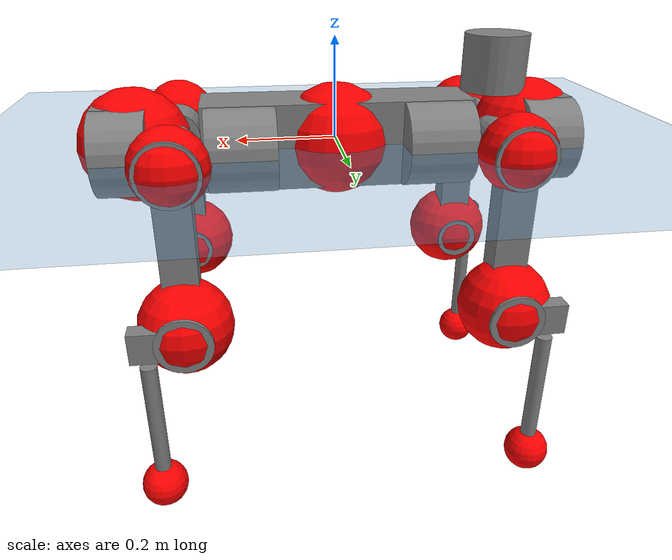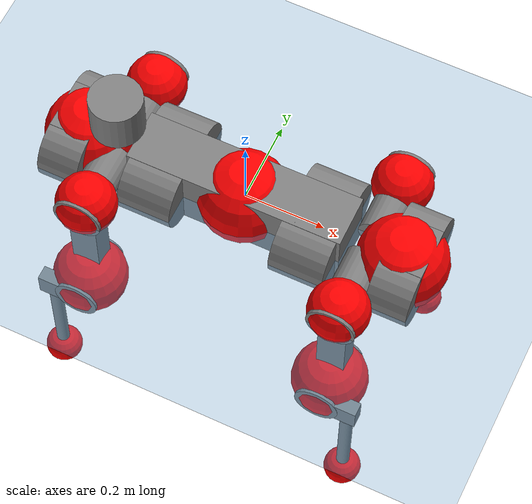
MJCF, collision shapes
<mujoco model="anymal_c">
  <compiler angle="radian" assetdir="assets" balanceinertia="true" inertiafromgeom="false"/>

  <option timestep="0.005" density="1.2" viscosity="2e-05"/>

  <size nkey="1"/>

  <visual>
    <quality shadowsize="8192"/>
    <map shadowclip="0.5"/>
  </visual>

  <default>
    <default class="/">
      <material specular="0" shininess="0.25"/>
      <geom contype="0" conaffinity="0" group="1" solref="-1000 -80"/>
      <site size="0.01 0.005 0.005" group="5"/>
      <general forcelimited="true" forcerange="-80 80" biastype="affine" gainprm="80" biasprm="0 -80 -2"/>
      <default class="anymal_c">
        <joint armature="0.01" damping="0.01" frictionloss="0.1"/>
        <default class="visual">
          <geom type="mesh" group="2"/>
          <default class="visual_zflip"/>
        </default>
        <default class="collision">
          <geom type="cylinder" group="3"/>
          <default class="foot">
            <geom size="0.03 0 0" type="sphere" condim="6" priority="1" friction="0.8 0.02 0.01" solimp="0.015 1 0.03"/>
          </default>
        </default>
      </default>
      <default class="reward_collision_sphere">
        <geom group="5" rgba="1 0 0 1"/>
      </default>
    </default>
  </default>

  <asset>
    <texture type="skybox" colorspace="auto" name="//unnamed_texture_0" builtin="gradient" rgb1="0.95 0.95 0.95" rgb2="0.95 0.95 0.95" width="100" height="600"/>
    <texture type="2d" colorspace="auto" name="texplane" builtin="checker" rgb1="0.345 0.575 0.748" rgb2="0.345 0.575 0.748" markrgb="1 1 1" width="512" height="512"/>
    <texture type="2d" colorspace="linear" name="base" file="base.png"/>
    <texture type="2d" colorspace="linear" name="top_shell" file="top_shell.png"/>
    <texture type="2d" colorspace="linear" name="bottom_shell" file="bottom_shell.png"/>
    <texture type="2d" colorspace="linear" name="remote" file="remote.png"/>
    <texture type="2d" colorspace="linear" name="hatch" file="hatch.png"/>
    <texture type="2d" colorspace="linear" name="handle" file="handle.png"/>
    <texture type="2d" colorspace="linear" name="face" file="face.png"/>
    <texture type="2d" colorspace="linear" name="battery" file="battery.png"/>
    <texture type="2d" colorspace="linear" name="lidar_cage" file="lidar_cage.png"/>
    <texture type="2d" colorspace="linear" name="depth_camera" file="depth_camera.png"/>
    <texture type="2d" colorspace="linear" name="wide_angle_camera" file="wide_angle_camera.png"/>
    <texture type="2d" colorspace="linear" name="lidar" file="lidar.png"/>
    <texture type="2d" colorspace="linear" name="drive" file="drive.png"/>
    <texture type="2d" colorspace="linear" name="hip_l" file="hip_l.png"/>
    <texture type="2d" colorspace="linear" name="shank_l" file="shank_l.png"/>
    <texture type="2d" colorspace="linear" name="foot" file="foot.png"/>
    <texture type="2d" colorspace="linear" name="thigh" file="thigh.png"/>
    <texture type="2d" colorspace="linear" name="shank_r" file="shank_r.png"/>
    <texture type="2d" colorspace="linear" name="hip_r" file="hip_r.png"/>
    <material name="MatPlane" class="/" texture="texplane" texuniform="true" texrepeat="2 2" specular="0.9" shininess="0.5"/>
    <material name="black_plastic" class="/" rgba="0.007 0.007 0.007 1"/>
    <material name="green" class="/" rgba="0.052 0.178 0.033 1"/>
    <material name="red" class="/" rgba="0.178 0.006 0.005 1"/>
    <material name="yellow" class="/" rgba="0.178 0.119 0.006 1"/>
    <material name="lwl" class="/" rgba="0.8 0.8 0.8 1"/>
    <material name="base" class="/" texture="base"/>
    <material name="top_shell" class="/" texture="top_shell"/>
    <material name="bottom_shell" class="/" texture="bottom_shell"/>
    <material name="hip_l" class="/" texture="hip_l"/>
    <material name="thigh" class="/" texture="thigh"/>
    <material name="shank_l" class="/" texture="shank_l"/>
    <material name="foot" class="/" texture="foot"/>
    <material name="hip_r" class="/" texture="hip_r"/>
    <material name="shank" class="/" texture="shank_r"/>
    <material name="hatch" class="/" texture="hatch"/>
    <material name="remote" class="/" texture="remote"/>
    <material name="handle" class="/" texture="handle"/>
    <material name="face" class="/" texture="face"/>
    <material name="depth_camera" class="/" texture="depth_camera"/>
    <material name="wide_angle_camera" class="/" texture="wide_angle_camera"/>
    <material name="battery" class="/" texture="battery"/>
    <material name="lidar_cage" class="/" texture="lidar_cage"/>
    <material name="lidar" class="/" texture="lidar"/>
    <material name="drive" class="/" texture="drive"/>
    <mesh name="base_0" class="/" file="base_0.obj"/>
    <mesh name="base_1" class="/" file="base_1.obj"/>
    <mesh name="base_2" class="/" file="base_2.obj"/>
    <mesh name="base_3" class="/" file="base_3.obj"/>
    <mesh name="base_4" class="/" file="base_4.obj"/>
    <mesh name="base_5" class="/" file="base_5.obj"/>
    <mesh name="top_shell" class="/" file="top_shell.obj"/>
    <mesh name="bottom_shell" class="/" file="bottom_shell.obj"/>
    <mesh name="remote" class="/" file="remote.obj"/>
    <mesh name="handle" class="/" file="handle.obj"/>
    <mesh name="face" class="/" file="face.obj"/>
    <mesh name="wide_angle_camera" class="/" file="wide_angle_camera.obj"/>
    <mesh name="depth_camera" class="/" file="depth_camera.obj"/>
    <mesh name="battery" class="/" file="battery.obj"/>
    <mesh name="lidar_cage" class="/" file="lidar_cage.obj"/>
    <mesh name="lidar" class="/" file="lidar.obj"/>
    <mesh name="drive" class="/" file="drive.obj"/>
    <mesh name="hip_l" class="/" file="hip_l.obj"/>
    <mesh name="thigh" class="/" file="thigh.obj"/>
    <mesh name="shank_l" class="/" file="shank_l.obj"/>
    <mesh name="foot" class="/" file="foot.obj"/>
    <mesh name="hip_r" class="/" file="hip_r.obj"/>
    <mesh name="hatch" class="/" file="hatch.obj"/>
    <mesh name="shank_r" class="/" file="shank_r.obj"/>
  </asset>

  <worldbody>
    <geom name="floor" class="/" size="100 100 0.125" type="plane" group="0" material="MatPlane"/>
    <light name="toplight_shadow" class="/" pos="0 0 5" dir="0.0990148 0.0990148 -0.990148" type="directional" ambient="0.04 0.04 0.04" diffuse="0.55 0.55 0.55" specular="0.12 0.12 0.12"/>
    <light name="toplight_fill" class="/" pos="0 0 5" dir="0.0990148 0.0990148 -0.990148" type="directional" castshadow="false" ambient="0.04 0.04 0.04" diffuse="0.3 0.3 0.3" specular="0.08 0.08 0.08"/>
    <body name="trunk" childclass="anymal_c" pos="-0.00254588 -0.00103552 -0.00145423" quat="0.999999 0.000332296 -0.00105878 -1.33739e-05">
      <inertial pos="0.000327193 0.00143042 0.0540021" quat="0.505551 0.507549 0.49082 0.495891" mass="15.3909" diaginertia="0.371795 0.229501 0.335753"/>
      <joint name="//unnamed_joint_0" type="free" armature="0" damping="0" frictionloss="0"/>
      <geom name="//unnamed_geom_1" class="visual" material="green" mesh="base_0"/>
      <geom name="//unnamed_geom_2" class="visual" material="yellow" mesh="base_1"/>
      <geom name="//unnamed_geom_3" class="visual" material="red" mesh="base_2"/>
      <geom name="//unnamed_geom_4" class="visual" material="black_plastic" mesh="base_3"/>
      <geom name="//unnamed_geom_5" class="visual" material="lwl" mesh="base_4"/>
      <geom name="//unnamed_geom_6" class="visual" material="base" mesh="base_5"/>
      <geom name="trunk_1" class="collision" size="0.271007 0.0654155 0.0841057" type="box"/>
      <geom name="trunk_2" class="collision" size="0.0841057 0.0677518" pos="0.19449 0.0574675 0" quat="0.707107 0 0.707107 0"/>
      <geom name="trunk_3" class="collision" size="0.0841057 0.0677518" pos="-0.19449 0.0574675 0" quat="0.707107 0 0.707107 0"/>
      <geom name="trunk_4" class="collision" size="0.0841057 0.0677518" pos="0.19449 -0.0574675 0" quat="0.707107 0 0.707107 0"/>
      <geom name="trunk_5" class="collision" size="0.0841057 0.0677518" pos="-0.19449 -0.0574675 0" quat="0.707107 0 0.707107 0"/>
      <geom name="//unnamed_geom_12" class="visual" material="top_shell" mesh="top_shell"/>
      <geom name="//unnamed_geom_13" class="visual" material="bottom_shell" mesh="bottom_shell"/>
      <geom name="//unnamed_geom_14" class="visual" material="remote" mesh="remote"/>
      <geom name="//unnamed_geom_15" class="visual" material="handle" mesh="handle"/>
      <geom name="//unnamed_geom_16" class="visual" pos="0.370649 0 0" quat="1 0 0 0" material="face" mesh="face"/>
      <geom name="trunk_6" class="collision" size="0.0513979 0.0654155 0.0841057" pos="0.41983 0 0" type="box"/>
      <geom name="//unnamed_geom_18" class="collision" size="0.0841057 0.0513979" pos="0.41983 0.0574675 0" quat="0.707107 0 0.707107 0"/>
      <geom name="//unnamed_geom_19" class="collision" size="0.0841057 0.0513979" pos="0.41983 -0.0574675 0" quat="0.707107 0 0.707107 0"/>
      <geom name="//unnamed_geom_20" class="visual" pos="0.412819 0 -0.0332553" quat="0.965926 0 0.258819 0" material="depth_camera" mesh="depth_camera"/>
      <geom name="//unnamed_geom_21" class="visual" pos="0.458729 0 0.0162926" material="wide_angle_camera" mesh="wide_angle_camera"/>
      <geom name="//unnamed_geom_22" class="visual_zflip" pos="-0.370649 0 0" quat="0 0 0 1" material="face" mesh="face"/>
      <geom name="trunk_7" class="collision" size="0.0513979 0.0654155 0.0841057" pos="-0.41983 0 0" quat="0 0 0 1" type="box"/>
      <geom name="//unnamed_geom_24" class="collision" size="0.0841057 0.0513979" pos="-0.41983 -0.0574675 0" quat="0 -0.707107 0 0.707107"/>
      <geom name="//unnamed_geom_25" class="collision" size="0.0841057 0.0513979" pos="-0.41983 0.0574675 0" quat="0 -0.707107 0 0.707107"/>
      <geom name="//unnamed_geom_26" class="visual" pos="-0.412819 0 -0.0332553" quat="0 -0.258819 0 0.965926" material="depth_camera" mesh="depth_camera"/>
      <geom name="//unnamed_geom_27" class="visual_zflip" pos="-0.458729 0 0.0162926" quat="0 0 0 1" material="wide_angle_camera" mesh="wide_angle_camera"/>
      <geom name="//unnamed_geom_28" class="visual" material="battery" mesh="battery"/>
      <geom name="//unnamed_geom_29" class="visual" pos="0 0.0618179 0.0301411" quat="0.683013 -0.183013 0.183013 0.683013" material="depth_camera" mesh="depth_camera"/>
      <geom name="//unnamed_geom_30" class="visual" pos="0 -0.0618179 0.0301411" quat="0.683013 0.183013 0.183013 -0.683013" material="depth_camera" mesh="depth_camera"/>
      <geom name="//unnamed_geom_31" class="visual" pos="-0.325492 0 0.0799938" quat="1 0 0 0" material="lidar_cage" mesh="lidar_cage"/>
      <geom name="trunk_8" class="collision" size="0.0654155 0.0560705" pos="-0.325492 0 0.145295"/>
      <geom name="//unnamed_geom_33" class="visual" pos="-0.325492 -2.87754e-05 0.154764" quat="0.707107 0 0 -0.707107" material="lidar" mesh="lidar"/>
      <geom name="//unnamed_geom_34" class="visual" pos="0.268173 0.0854753 -4.61246e-09" quat="0.258819 0.965926 0 0" material="drive" mesh="drive"/>
      <geom name="//unnamed_geom_35" class="visual" pos="0.268173 -0.0854753 4.61246e-09" quat="0.258819 -0.965926 0 0" material="drive" mesh="drive"/>
      <geom name="//unnamed_geom_36" class="visual" pos="-0.268173 0.0854753 4.61246e-09" quat="0 0 0.965926 -0.258819" material="drive" mesh="drive"/>
      <geom name="//unnamed_geom_37" class="visual" pos="-0.268173 -0.0854753 -4.61246e-09" quat="0 0 -0.965926 -0.258819" material="drive" mesh="drive"/>
      <geom name="//unnamed_geom_38" class="visual" pos="0.103728 0 0.0794496" quat="1 0 0 0" material="hatch" mesh="hatch"/>
      <geom name="//unnamed_geom_39" class="reward_collision_sphere" size="0.112141"/>
      <geom name="//unnamed_geom_40" class="reward_collision_sphere" size="0.112141" pos="0.402393 0 0"/>
      <geom name="//unnamed_geom_41" class="reward_collision_sphere" size="0.112141" pos="-0.402393 0 0"/>
      <site name="imu" pos="0.231402 -0.00409298 0.0491452" size="0.00934508"/>
      <camera name="track" pos="0 -1.64193 0" quat="0.707107 0.707107 0 0" mode="trackcom"/>
      <camera name="ego_camera" pos="0.402393 0 -0.043534" quat="-0.5 -0.5 0.5 0.5"/>
      <body name="LF_HIP" pos="0.269127 0.0863407 -0.00236067" quat="0.260061 0.965592 -0.000287406 -0.000153298">
        <inertial pos="0.0492441 -0.012606 -0.0083099" quat="-0.127942 0.703298 -0.127556 0.687555" mass="2.34535" diaginertia="0.00345293 0.00189054 0.00529004"/>
        <joint name="LF_HAA" pos="0 0 0" axis="0.99992 0.0124244 -0.00221839" stiffness="0.00164333" range="-0.665785 0.494153" armature="0.0106704" damping="0.00598595" frictionloss="0.0984517"/>
        <geom name="//unnamed_geom_42" class="visual" pos="0 -0.00027133 4.45657e-05" quat="0.258819 -0.965926 0 0" material="hip_l" mesh="hip_l"/>
        <geom name="//unnamed_geom_43" class="visual" pos="0.053563 -0.0640336 -0.0389476" quat="0.183013 -0.683013 0.683013 0.183013" material="drive" mesh="drive"/>
        <geom name="//unnamed_geom_44" class="collision" size="0.0467254 0.0654155" pos="0.053563 -0.00981857 -0.00751506" quat="-0.353553 -0.612372 0.612372 -0.353553"/>
        <body name="LF_THIGH" pos="0.0538217 -0.0598113 -0.0463542" quat="0.182814 -0.683042 0.683062 0.182919">
          <inertial pos="0.0272904 -0.00258079 -0.269526" quat="0.993338 -0.00470838 -0.0805712 0.0822584" mass="2.54361" diaginertia="0.0170886 0.0109232 0.00631683"/>
          <joint name="LF_HFE" pos="0 0 0" axis="0.999999 -0.000928033 -0.00144448" stiffness="0.00426508" range="-3.14384 3.18702" armature="0.00867088" damping="0" frictionloss="0.0932169"/>
          <geom name="//unnamed_geom_45" class="visual" pos="0.00145726 2.2963e-06 0" quat="0.707107 0 0 -0.707107" material="thigh" mesh="thigh"/>
          <geom name="//unnamed_geom_46" class="collision" size="0.060743 0.0373803" pos="0.0357683 0 0" quat="0.5 0.5 -0.5 -0.5"/>
          <geom name="//unnamed_geom_47" class="collision" size="0.035044 0.0280352 0.132059" pos="0.0268262 0 -0.153799" quat="0.707107 0 0 -0.707107" type="box"/>
          <geom name="//unnamed_geom_48" class="visual" pos="0.089689 0 -0.31018" quat="1 0 0 0" material="drive" mesh="drive"/>
          <geom name="//unnamed_geom_49" class="collision" size="0.0467254 0.0654155" pos="0.0270945 0 -0.31018" quat="0.707107 0 0.707107 0"/>
          <geom name="//unnamed_geom_50" class="reward_collision_sphere" size="0.0747606" pos="0.0223552 0 0"/>
          <body name="LF_SHANK" pos="0.0916362 0.0019653 -0.307827" quat="1 -3.32112e-05 -9.97675e-06 -2.77216e-05">
            <inertial pos="0.00524741 -0.0519875 -0.0854335" quat="0.992806 -0.117031 0.000112551 -0.0253172" mass="0.499768" diaginertia="0.00603073 0.00350614 0.00171435"/>
            <joint name="LF_KFE" pos="0 0 0" axis="0.999998 0.00109523 0.00141231" range="-3.09354 3.08443" armature="0.00916403" damping="0.0102355" frictionloss="0.0977988"/>
            <geom name="//unnamed_geom_51" class="visual" pos="0.00047518 0.00253369 0" quat="0.707107 0 0 -0.707107" material="shank_l" mesh="shank_l"/>
            <geom name="LF_kfe_act" class="collision" size="0.0560705 0.0186902" pos="0.0178842 0 0" quat="0.5 0.5 -0.5 -0.5"/>
            <geom name="//unnamed_geom_53" class="collision" size="0.0537333 0.0315396 0.0177556" pos="0.0178842 -0.0472046 0" quat="0.5 0.5 -0.5 -0.5" type="box"/>
            <geom name="//unnamed_geom_54" class="visual" pos="0.0116693 -0.0713873 -0.36783" quat="0.382683 0 0 -0.92388" material="foot" mesh="foot"/>
            <geom name="LF_calf" class="collision" size="0.0163539 0.132001" pos="0.0116694 -0.0722038 -0.183915" quat="0.707107 0 0 -0.707107"/>
            <geom name="LF_foot" class="foot" size="0.0267651" pos="0.0116694 -0.0722038 -0.343342" quat="0.707107 0 0 -0.707107"/>
            <geom name="//unnamed_geom_57" class="reward_collision_sphere" size="0.0934508" pos="-0.0447104 0 0"/>
            <geom name="//unnamed_geom_58" class="reward_collision_sphere" size="0.0467254" pos="0.0116694 -0.0722038 -0.343342"/>
            <site name="LF_foot" class="foot" pos="0.0116694 -0.0722038 -0.343342" quat="0.707107 0 0 -0.707107" size="0.00934508"/>
          </body>
        </body>
      </body>
      <body name="RF_HIP" pos="0.270322 -0.0843736 0.00282578" quat="0.258819 -0.965926 2.50253e-06 2.93699e-07">
        <inertial pos="0.0514273 0.0107117 -0.00858845" quat="0.136166 0.670667 0.122468 0.718795" mass="2.35211" diaginertia="0.00338981 0.00191126 0.00511822"/>
        <joint name="RF_HAA" pos="0 0 0" axis="0.999996 0.000174629 -0.00277822" range="-0.441284 0.721649" armature="0.00935305" damping="0.00874182" frictionloss="0.0935831"/>
        <geom name="//unnamed_geom_59" class="visual" pos="0 0.000271328 4.45656e-05" quat="0.258819 0.965926 0 0" material="hip_r" mesh="hip_r"/>
        <geom name="//unnamed_geom_60" class="visual" pos="0.053563 0.0640336 -0.0389476" quat="0.183013 0.683013 0.683013 -0.183013" material="drive" mesh="drive"/>
        <geom name="//unnamed_geom_61" class="collision" size="0.0467254 0.0654155" pos="0.053563 0.00981857 -0.00751506" quat="-0.353553 0.612372 0.612372 0.353553"/>
        <body name="RF_THIGH" pos="0.0552041 0.0618305 -0.0487969" quat="0.18292 0.683073 0.683033 -0.182804">
          <inertial pos="0.0278639 7.11475e-05 -0.269742" quat="0.993457 -0.00880807 -0.0708997 0.0890952" mass="2.58037" diaginertia="0.0175036 0.0115068 0.00659277"/>
          <joint name="RF_HFE" pos="0 0 0" axis="0.999998 0.000682456 -0.00187838" stiffness="0.00546105" range="-3.19474 3.19371" armature="0.00816447" damping="0.00893578" frictionloss="0.0892616"/>
          <geom name="//unnamed_geom_62" class="visual" pos="0.00145726 2.2963e-06 0" quat="0.707107 0 0 -0.707107" material="thigh" mesh="thigh"/>
          <geom name="//unnamed_geom_63" class="collision" size="0.060743 0.0373803" pos="0.0357683 0 0" quat="0.5 0.5 0.5 0.5"/>
          <geom name="//unnamed_geom_64" class="collision" size="0.035044 0.0280352 0.132059" pos="0.0268262 0 -0.153799" quat="0.707107 0 0 0.707107" type="box"/>
          <geom name="//unnamed_geom_65" class="visual" pos="0.089689 0 -0.31018" quat="1 0 0 0" material="drive" mesh="drive"/>
          <geom name="//unnamed_geom_66" class="collision" size="0.0467254 0.0654155" pos="0.0270945 0 -0.31018" quat="0.707107 0 0.707107 0"/>
          <geom name="//unnamed_geom_67" class="reward_collision_sphere" size="0.0747606" pos="0.0223552 0 0"/>
          <body name="RF_SHANK" pos="0.0906257 -0.000339339 -0.311049" quat="1 -9.50014e-06 -2.56901e-06 -4.30088e-07">
            <inertial pos="0.00413298 0.0506911 -0.0856139" quat="0.993906 0.107572 -0.00108887 0.0240468" mass="0.451968" diaginertia="0.00571109 0.00345075 0.00160833"/>
            <joint name="RF_KFE" pos="0 0 0" axis="0.999999 -0.000586099 -0.00118244" range="-3.14538 3.1035" armature="0.0106399" damping="0.00875791" frictionloss="0.0928933"/>
            <geom name="//unnamed_geom_68" class="visual" pos="0.000475178 -0.00253368 0" quat="0.707107 0 0 0.707107" material="shank" mesh="shank_r"/>
            <geom name="RF_kfe_act" class="collision" size="0.0560705 0.0186902" pos="0.0178842 0 0" quat="0.5 0.5 0.5 0.5"/>
            <geom name="//unnamed_geom_70" class="collision" size="0.0537333 0.0315396 0.0177556" pos="0.0178842 0.0472046 0" quat="0.5 0.5 0.5 0.5" type="box"/>
            <geom name="//unnamed_geom_71" class="visual" pos="0.0116695 0.0713873 -0.36783" quat="0.382683 0 0 0.92388" material="foot" mesh="foot"/>
            <geom name="RF_calf" class="collision" size="0.0163539 0.132001" pos="0.0116694 0.0722038 -0.183915" quat="0.707107 0 0 0.707107"/>
            <geom name="RF_foot" class="foot" size="0.0285994" pos="0.0116694 0.0722038 -0.343342" quat="0.707107 0 0 0.707107"/>
            <geom name="//unnamed_geom_74" class="reward_collision_sphere" size="0.0934508" pos="-0.0447104 0 0"/>
            <geom name="//unnamed_geom_75" class="reward_collision_sphere" size="0.0467254" pos="0.0116694 0.0722038 -0.343342"/>
            <site name="RF_foot" class="foot" pos="0.0116694 0.0722038 -0.343342" quat="0.707107 0 0 0.707107" size="0.00934508"/>
          </body>
        </body>
      </body>
      <body name="LH_HIP" pos="-0.266713 0.0849496 -0.0016283" quat="-0.000265529 0.000146329 0.965985 -0.258596">
        <inertial pos="0.0512197 0.0129289 -0.0118232" quat="0.132963 0.678587 0.123913 0.711679" mass="2.37327" diaginertia="0.00350611 0.00180066 0.00505514"/>
        <joint name="LH_HAA" pos="0 0 0" axis="0.999999 -0.00161233 -0.000471114" range="-0.4458 0.777116" armature="0.00937483" damping="0" frictionloss="0.106254"/>
        <geom name="//unnamed_geom_76" class="visual" pos="0 0.000271328 4.45656e-05" quat="-0.258819 -0.965926 0 0" material="hip_r" mesh="hip_r"/>
        <geom name="//unnamed_geom_77" class="visual" pos="0.053563 0.0640336 -0.0389476" quat="0.183013 0.683013 0.683013 -0.183013" material="drive" mesh="drive"/>
        <geom name="//unnamed_geom_78" class="collision" size="0.0467254 0.0654155" pos="0.053563 0.00981857 -0.00751506" quat="-0.353553 0.612372 0.612372 0.353553"/>
        <body name="LH_THIGH" pos="0.0533975 0.0602189 -0.0481621" quat="0.183179 0.683057 0.682942 -0.182944">
          <inertial pos="0.0248618 -0.00106366 -0.269449" quat="0.993252 -0.0171663 -0.0742215 0.0874422" mass="2.56179" diaginertia="0.0168795 0.0113129 0.00622833"/>
          <joint name="LH_HFE" pos="0 0 0" axis="0.999869 0.00560896 -0.0151732" range="-3.19635 3.15963" armature="0.00947952" damping="0.00756812" frictionloss="0.0909447"/>
          <geom name="//unnamed_geom_79" class="visual" pos="0.00145726 2.2963e-06 0" quat="0.707107 0 0 -0.707107" material="thigh" mesh="thigh"/>
          <geom name="//unnamed_geom_80" class="collision" size="0.060743 0.0373803" pos="0.0357683 0 0" quat="0.5 0.5 -0.5 -0.5"/>
          <geom name="//unnamed_geom_81" class="collision" size="0.035044 0.0280352 0.132059" pos="0.0268262 0 -0.153799" quat="0.707107 0 0 -0.707107" type="box"/>
          <geom name="//unnamed_geom_82" class="visual" pos="0.089689 0 -0.31018" quat="1 0 0 0" material="drive" mesh="drive"/>
          <geom name="//unnamed_geom_83" class="collision" size="0.0467254 0.0654155" pos="0.0270945 0 -0.31018" quat="0.707107 0 0.707107 0"/>
          <geom name="//unnamed_geom_84" class="reward_collision_sphere" size="0.0747606" pos="0.0223552 0 0"/>
          <body name="LH_SHANK" pos="0.0881849 -0.000248353 -0.312658" quat="1 -6.59987e-05 -2.16986e-05 0.00016145">
            <inertial pos="0.0067428 0.0480556 -0.0854888" quat="0.994256 0.105698 -0.00307118 0.0165164" mass="0.463283" diaginertia="0.00582158 0.00346341 0.00170301"/>
            <joint name="LH_KFE" pos="0 0 0" axis="0.999945 0.007148 -0.00761537" range="-3.14784 3.13968" armature="0.00901289" damping="0.0026314" frictionloss="0.102574"/>
            <geom name="//unnamed_geom_85" class="visual" pos="0.000475178 -0.00253368 0" quat="-0.707107 0 0 -0.707107" material="shank" mesh="shank_r"/>
            <geom name="LH_kfe_act" class="collision" size="0.0560705 0.0186902" pos="0.0178842 0 0" quat="0.5 0.5 -0.5 -0.5"/>
            <geom name="//unnamed_geom_87" class="collision" size="0.0537333 0.0315396 0.0177556" pos="0.0178842 0.0472046 0" quat="0.5 0.5 -0.5 -0.5" type="box"/>
            <geom name="//unnamed_geom_88" class="visual" pos="0.0116695 0.0713873 -0.36783" quat="-0.382683 0 0 -0.92388" material="foot" mesh="foot"/>
            <geom name="LH_calf" class="collision" size="0.0163539 0.132001" pos="0.0116694 0.0722038 -0.183915" quat="0.707107 0 0 -0.707107"/>
            <geom name="LH_foot" class="foot" size="0.0321764" pos="0.0116694 0.0722038 -0.343342" quat="0.707107 0 0 -0.707107"/>
            <geom name="//unnamed_geom_91" class="reward_collision_sphere" size="0.0934508" pos="-0.0447104 0 0"/>
            <geom name="//unnamed_geom_92" class="reward_collision_sphere" size="0.0467254" pos="0.0116694 0.0722038 -0.343342"/>
            <site name="LH_foot" class="foot" pos="0.0116694 0.0722038 -0.343342" quat="0.707107 0 0 -0.707107" size="0.00934508"/>
          </body>
        </body>
      </body>
      <body name="RH_HIP" pos="-0.268121 -0.0854836 0.00169059" quat="-2.06668e-05 3.35341e-06 -0.96592 -0.25884">
        <inertial pos="0.0512164 -0.00990364 -0.0118386" quat="-0.128012 0.709801 -0.135235 0.679343" mass="2.22715" diaginertia="0.00329238 0.00180241 0.00488835"/>
        <joint name="RH_HAA" pos="0 0 0" axis="0.999998 0.00213248 5.34611e-05" stiffness="0.000288594" range="-0.719618 0.437787" armature="0.00854807" damping="0" frictionloss="0.09454"/>
        <geom name="//unnamed_geom_93" class="visual" pos="0 -0.00027133 4.45657e-05" quat="-0.258819 0.965926 0 0" material="hip_l" mesh="hip_l"/>
        <geom name="//unnamed_geom_94" class="visual" pos="0.053563 -0.0640336 -0.0389476" quat="-0.183013 0.683013 -0.683013 -0.183013" material="drive" mesh="drive"/>
        <geom name="//unnamed_geom_95" class="collision" size="0.0467254 0.0654155" pos="0.053563 -0.00981857 -0.00751506" quat="0.353553 0.612372 -0.612372 0.353553"/>
        <body name="RH_THIGH" pos="0.0524503 -0.0588217 -0.0428883" quat="-0.183072 0.682958 -0.683023 -0.183122">
          <inertial pos="0.025768 0.00246683 -0.267101" quat="0.993135 -0.00541242 -0.0807291 0.0844743" mass="2.33505" diaginertia="0.0169206 0.010849 0.0063809"/>
          <joint name="RH_HFE" pos="0 0 0" axis="0.999997 0.00122842 0.00226702" stiffness="0.00995545" range="-3.19314 3.1975" armature="0.00968744" damping="0.00847006" frictionloss="0.0805021"/>
          <geom name="//unnamed_geom_96" class="visual" pos="0.00145726 2.2963e-06 0" quat="0.707107 0 0 -0.707107" material="thigh" mesh="thigh"/>
          <geom name="//unnamed_geom_97" class="collision" size="0.060743 0.0373803" pos="0.0357683 0 0" quat="0.5 0.5 0.5 0.5"/>
          <geom name="//unnamed_geom_98" class="collision" size="0.035044 0.0280352 0.132059" pos="0.0268262 0 -0.153799" quat="0.707107 0 0 0.707107" type="box"/>
          <geom name="//unnamed_geom_99" class="visual" pos="0.089689 0 -0.31018" quat="1 0 0 0" material="drive" mesh="drive"/>
          <geom name="//unnamed_geom_100" class="collision" size="0.0467254 0.0654155" pos="0.0270945 0 -0.31018" quat="0.707107 0 0.707107 0"/>
          <geom name="//unnamed_geom_101" class="reward_collision_sphere" size="0.0747606" pos="0.0223552 0 0"/>
          <body name="RH_SHANK" pos="0.0917314 0.00161854 -0.307971" quat="1 -0.000434786 -0.000517046 0.00020353">
            <inertial pos="0.00518503 -0.0501947 -0.0875176" quat="0.993049 -0.115843 -0.00314887 -0.0205736" mass="0.45041" diaginertia="0.00570498 0.00336465 0.00165493"/>
            <joint name="RH_KFE" pos="0 0 0" axis="0.999999 0.000253149 -0.00148983" range="-3.12653 3.17306" armature="0.00885063" damping="0" frictionloss="0.090907"/>
            <geom name="//unnamed_geom_102" class="visual" pos="0.00047518 0.00253369 0" quat="0.707107 0 0 -0.707107" material="shank_l" mesh="shank_l"/>
            <geom name="RH_kfe_act" class="collision" size="0.0560705 0.0186902" pos="0.0178842 0 0" quat="0.5 0.5 0.5 0.5"/>
            <geom name="//unnamed_geom_104" class="collision" size="0.0537333 0.0315396 0.0177556" pos="0.0178842 -0.0472046 0" quat="0.5 0.5 0.5 0.5" type="box"/>
            <geom name="//unnamed_geom_105" class="visual" pos="0.0116693 -0.0713873 -0.36783" quat="0.382683 0 0 -0.92388" material="foot" mesh="foot"/>
            <geom name="RH_calf" class="collision" size="0.0163539 0.132001" pos="0.0116694 -0.0722038 -0.183915" quat="0.707107 0 0 0.707107"/>
            <geom name="RH_foot" class="foot" size="0.0275138" pos="0.0116694 -0.0722038 -0.343342" quat="0.707107 0 0 0.707107"/>
            <geom name="//unnamed_geom_108" class="reward_collision_sphere" size="0.0934508" pos="-0.0447104 0 0"/>
            <geom name="//unnamed_geom_109" class="reward_collision_sphere" size="0.0467254" pos="0.0116694 -0.0722038 -0.343342"/>
            <site name="RH_foot" class="foot" pos="0.0116694 -0.0722038 -0.343342" quat="0.707107 0 0 0.707107" size="0.00934508"/>
          </body>
        </body>
      </body>
    </body>
  </worldbody>

  <contact>
    <pair class="/" geom1="floor" geom2="LF_foot" name="//unnamed_contact_0"/>
    <pair class="/" geom1="floor" geom2="RF_foot" name="//unnamed_contact_1"/>
    <pair class="/" geom1="floor" geom2="LH_foot" name="//unnamed_contact_2"/>
    <pair class="/" geom1="floor" geom2="RH_foot" name="//unnamed_contact_3"/>
  </contact>

  <actuator>
    <general name="LF_HAA" class="/" joint="LF_HAA" forcerange="-72.9214 72.9214" gainprm="71.4564" biasprm="0 -71.4564 -1.96952"/>
    <general name="LF_HFE" class="/" joint="LF_HFE" forcerange="-82.431 82.431" gainprm="71.4564" biasprm="0 -71.4564 -1.96952"/>
    <general name="LF_KFE" class="/" joint="LF_KFE" forcerange="-66.7245 66.7245" gainprm="71.4564" biasprm="0 -71.4564 -1.96952"/>
    <general name="RF_HAA" class="/" joint="RF_HAA" forcerange="-72.5764 72.5764" gainprm="71.4564" biasprm="0 -71.4564 -1.96952"/>
    <general name="RF_HFE" class="/" joint="RF_HFE" forcerange="-82.8982 82.8982" gainprm="71.4564" biasprm="0 -71.4564 -1.96952"/>
    <general name="RF_KFE" class="/" joint="RF_KFE" forcerange="-80.2582 80.2582" gainprm="71.4564" biasprm="0 -71.4564 -1.96952"/>
    <general name="LH_HAA" class="/" joint="LH_HAA" forcerange="-82.3735 82.3735" gainprm="71.4564" biasprm="0 -71.4564 -1.96952"/>
    <general name="LH_HFE" class="/" joint="LH_HFE" forcerange="-79.8893 79.8893" gainprm="71.4564" biasprm="0 -71.4564 -1.96952"/>
    <general name="LH_KFE" class="/" joint="LH_KFE" forcerange="-71.8039 71.8039" gainprm="71.4564" biasprm="0 -71.4564 -1.96952"/>
    <general name="RH_HAA" class="/" joint="RH_HAA" forcerange="-75.9129 75.9129" gainprm="71.4564" biasprm="0 -71.4564 -1.96952"/>
    <general name="RH_HFE" class="/" joint="RH_HFE" forcerange="-68.4204 68.4204" gainprm="71.4564" biasprm="0 -71.4564 -1.96952"/>
    <general name="RH_KFE" class="/" joint="RH_KFE" forcerange="-67.2769 67.2769" gainprm="71.4564" biasprm="0 -71.4564 -1.96952"/>
  </actuator>

  <sensor>
    <gyro site="imu" name="imu_angular_velocity"/>
    <velocimeter site="imu" name="imu_linear_velocity"/>
    <framelinvel objtype="site" objname="LF_foot" name="LF_foot_global_linear_velocity"/>
    <framelinvel objtype="site" objname="RF_foot" name="RF_foot_global_linear_velocity"/>
    <framelinvel objtype="site" objname="LH_foot" name="LH_foot_global_linear_velocity"/>
    <framelinvel objtype="site" objname="RH_foot" name="RH_foot_global_linear_velocity"/>
  </sensor>

  <keyframe>
    <key name="home" qpos="0 0 0.55 1 0 0 0 0 0.4 -0.8 0 -0.4 0.8 0 -0.4 0.8 0 0.4 -0.8"/>
  </keyframe>
</mujoco>
